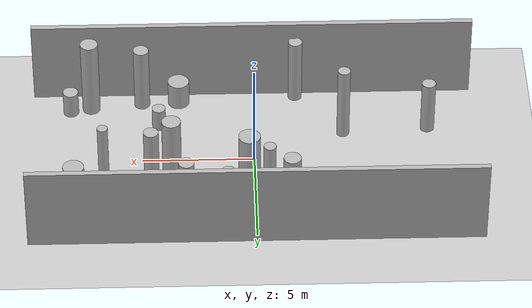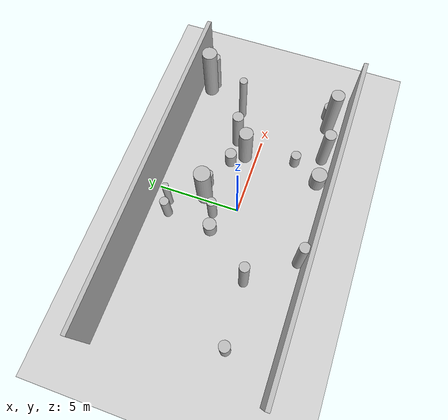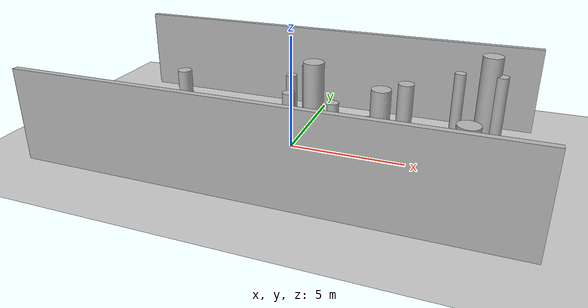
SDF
<?xml version="1.0"?>
<sdf version="1.4">
  <world name="default">
    <gui>
      <camera name="user_camera">
        <pose>-20 -30 40 0 0.66 0.83</pose>
      </camera>
    </gui>
    <include>
      <uri>model://ground_plane</uri>
    </include>
    <include>
      <uri>model://sun</uri>
    </include>
    <scene>
      <shadows>0</shadows>
    </scene>
    <model name="forest">
      <static>true</static>
      <link name="cylinder0">
        <pose>-1.6735517100893667 1.1504582004140786 0.5328721691134648 0 0 0 </pose>
        <visual name="visual">
          <geometry>
            <cylinder>
              <radius>0.3949328665443718</radius>
              <length>1.0657443382269296</length>
            </cylinder>
          </geometry>
        </visual>
        <collision name="collision">
          <geometry>
            <cylinder>
              <radius>0.3949328665443718</radius>
              <length>1.0657443382269296</length>
            </cylinder>
          </geometry>
          <max_contacts>0</max_contacts>
        </collision>
      </link>
      <link name="cylinder1">
        <pose>6.695063105569158 1.8921489105052478 1.8045743283946372 0 0 0 </pose>
        <visual name="visual">
          <geometry>
            <cylinder>
              <radius>0.232403181335236</radius>
              <length>3.6091486567892743</length>
            </cylinder>
          </geometry>
        </visual>
        <collision name="collision">
          <geometry>
            <cylinder>
              <radius>0.232403181335236</radius>
              <length>3.6091486567892743</length>
            </cylinder>
          </geometry>
          <max_contacts>0</max_contacts>
        </collision>
      </link>
      <link name="cylinder2">
        <pose>3.3708911881491677 -4.094109879331944 0.6172569849329157 0 0 0 </pose>
        <visual name="visual">
          <geometry>
            <cylinder>
              <radius>0.4831037447989271</radius>
              <length>1.2345139698658314</length>
            </cylinder>
          </geometry>
        </visual>
        <collision name="collision">
          <geometry>
            <cylinder>
              <radius>0.4831037447989271</radius>
              <length>1.2345139698658314</length>
            </cylinder>
          </geometry>
          <max_contacts>0</max_contacts>
        </collision>
      </link>
      <link name="cylinder3">
        <pose>4.2757088457827095 -2.39176409148956 0.5425854655330437 0 0 0 </pose>
        <visual name="visual">
          <geometry>
            <cylinder>
              <radius>0.3026528155428245</radius>
              <length>1.0851709310660873</length>
            </cylinder>
          </geometry>
        </visual>
        <collision name="collision">
          <geometry>
            <cylinder>
              <radius>0.3026528155428245</radius>
              <length>1.0851709310660873</length>
            </cylinder>
          </geometry>
          <max_contacts>0</max_contacts>
        </collision>
      </link>
      <link name="cylinder4">
        <pose>3.0560819861916713 1.468164974204984 0.5792149584897132 0 0 0 </pose>
        <visual name="visual">
          <geometry>
            <cylinder>
              <radius>0.35364086998826727</radius>
              <length>1.1584299169794263</length>
            </cylinder>
          </geometry>
        </visual>
        <collision name="collision">
          <geometry>
            <cylinder>
              <radius>0.35364086998826727</radius>
              <length>1.1584299169794263</length>
            </cylinder>
          </geometry>
          <max_contacts>0</max_contacts>
        </collision>
      </link>
      <link name="cylinder5">
        <pose>7.363554457524447 -3.7175463843747836 1.898955915284919 0 0 0 </pose>
        <visual name="visual">
          <geometry>
            <cylinder>
              <radius>0.40007294125637827</radius>
              <length>3.797911830569838</length>
            </cylinder>
          </geometry>
        </visual>
        <collision name="collision">
          <geometry>
            <cylinder>
              <radius>0.40007294125637827</radius>
              <length>3.797911830569838</length>
            </cylinder>
          </geometry>
          <max_contacts>0</max_contacts>
        </collision>
      </link>
      <link name="cylinder6">
        <pose>7.904163703279078 4.505981688766417 1.8452360798026484 0 0 0 </pose>
        <visual name="visual">
          <geometry>
            <cylinder>
              <radius>0.46144038741074256</radius>
              <length>3.6904721596052967</length>
            </cylinder>
          </geometry>
        </visual>
        <collision name="collision">
          <geometry>
            <cylinder>
              <radius>0.46144038741074256</radius>
              <length>3.6904721596052967</length>
            </cylinder>
          </geometry>
          <max_contacts>0</max_contacts>
        </collision>
      </link>
      <link name="cylinder7">
        <pose>-4.059715963201926 -1.7327281478482028 1.8208678730959773 0 0 0 </pose>
        <visual name="visual">
          <geometry>
            <cylinder>
              <radius>0.28197557458555217</radius>
              <length>3.6417357461919546</length>
            </cylinder>
          </geometry>
        </visual>
        <collision name="collision">
          <geometry>
            <cylinder>
              <radius>0.28197557458555217</radius>
              <length>3.6417357461919546</length>
            </cylinder>
          </geometry>
          <max_contacts>0</max_contacts>
        </collision>
      </link>
      <link name="cylinder8">
        <pose>8.39292786886638 4.305820044212627 1.4268721165713738 0 0 0 </pose>
        <visual name="visual">
          <geometry>
            <cylinder>
              <radius>0.2920932412750589</radius>
              <length>2.8537442331427476</length>
            </cylinder>
          </geometry>
        </visual>
        <collision name="collision">
          <geometry>
            <cylinder>
              <radius>0.2920932412750589</radius>
              <length>2.8537442331427476</length>
            </cylinder>
          </geometry>
          <max_contacts>0</max_contacts>
        </collision>
      </link>
      <link name="cylinder9">
        <pose>5.039802856899156 -3.979807692551196 1.5936346438245161 0 0 0 </pose>
        <visual name="visual">
          <geometry>
            <cylinder>
              <radius>0.35096928090323043</radius>
              <length>3.1872692876490323</length>
            </cylinder>
          </geometry>
        </visual>
        <collision name="collision">
          <geometry>
            <cylinder>
              <radius>0.35096928090323043</radius>
              <length>3.1872692876490323</length>
            </cylinder>
          </geometry>
          <max_contacts>0</max_contacts>
        </collision>
      </link>
      <link name="cylinder10">
        <pose>-0.6573735376286685 1.362354238043233 0.9820446610333271 0 0 0 </pose>
        <visual name="visual">
          <geometry>
            <cylinder>
              <radius>0.28031270679198883</radius>
              <length>1.9640893220666542</length>
            </cylinder>
          </geometry>
        </visual>
        <collision name="collision">
          <geometry>
            <cylinder>
              <radius>0.28031270679198883</radius>
              <length>1.9640893220666542</length>
            </cylinder>
          </geometry>
          <max_contacts>0</max_contacts>
        </collision>
      </link>
      <link name="cylinder11">
        <pose>-1.4663559753448325 3.95722114241552 0.9306900500239469 0 0 0 </pose>
        <visual name="visual">
          <geometry>
            <cylinder>
              <radius>0.2710232257035642</radius>
              <length>1.8613801000478938</length>
            </cylinder>
          </geometry>
        </visual>
        <collision name="collision">
          <geometry>
            <cylinder>
              <radius>0.2710232257035642</radius>
              <length>1.8613801000478938</length>
            </cylinder>
          </geometry>
          <max_contacts>0</max_contacts>
        </collision>
      </link>
      <link name="cylinder12">
        <pose>3.698394038409379 0.7206035834374314 1.462696021442595 0 0 0 </pose>
        <visual name="visual">
          <geometry>
            <cylinder>
              <radius>0.42356065320963254</radius>
              <length>2.92539204288519</length>
            </cylinder>
          </geometry>
        </visual>
        <collision name="collision">
          <geometry>
            <cylinder>
              <radius>0.42356065320963254</radius>
              <length>2.92539204288519</length>
            </cylinder>
          </geometry>
          <max_contacts>0</max_contacts>
        </collision>
      </link>
      <link name="cylinder13">
        <pose>-7.905327509894848 -1.9877776197469723 1.3104618712613862 0 0 0 </pose>
        <visual name="visual">
          <geometry>
            <cylinder>
              <radius>0.31256038332856406</radius>
              <length>2.6209237425227725</length>
            </cylinder>
          </geometry>
        </visual>
        <collision name="collision">
          <geometry>
            <cylinder>
              <radius>0.31256038332856406</radius>
              <length>2.6209237425227725</length>
            </cylinder>
          </geometry>
          <max_contacts>0</max_contacts>
        </collision>
      </link>
      <link name="cylinder14">
        <pose>-0.7449004589966322 4.118230512884839 1.1955457754277443 0 0 0 </pose>
        <visual name="visual">
          <geometry>
            <cylinder>
              <radius>0.20149503678063682</radius>
              <length>2.3910915508554886</length>
            </cylinder>
          </geometry>
        </visual>
        <collision name="collision">
          <geometry>
            <cylinder>
              <radius>0.20149503678063682</radius>
              <length>2.3910915508554886</length>
            </cylinder>
          </geometry>
          <max_contacts>0</max_contacts>
        </collision>
      </link>
      <link name="cylinder15">
        <pose>1.1990240794848752 2.2646411843429917 0.6909714631645354 0 0 0 </pose>
        <visual name="visual">
          <geometry>
            <cylinder>
              <radius>0.2839583977526933</radius>
              <length>1.3819429263290708</length>
            </cylinder>
          </geometry>
        </visual>
        <collision name="collision">
          <geometry>
            <cylinder>
              <radius>0.2839583977526933</radius>
              <length>1.3819429263290708</length>
            </cylinder>
          </geometry>
          <max_contacts>0</max_contacts>
        </collision>
      </link>
      <link name="cylinder16">
        <pose>4.589436679252724 1.5145551882885746 1.5032386192202432 0 0 0 </pose>
        <visual name="visual">
          <geometry>
            <cylinder>
              <radius>0.3354716798973104</radius>
              <length>3.0064772384404863</length>
            </cylinder>
          </geometry>
        </visual>
        <collision name="collision">
          <geometry>
            <cylinder>
              <radius>0.3354716798973104</radius>
              <length>3.0064772384404863</length>
            </cylinder>
          </geometry>
          <max_contacts>0</max_contacts>
        </collision>
      </link>
      <link name="cylinder17">
        <pose>-1.9712703392851534 -4.370925915735166 1.6076312165335587 0 0 0 </pose>
        <visual name="visual">
          <geometry>
            <cylinder>
              <radius>0.3110647708872779</radius>
              <length>3.2152624330671173</length>
            </cylinder>
          </geometry>
        </visual>
        <collision name="collision">
          <geometry>
            <cylinder>
              <radius>0.3110647708872779</radius>
              <length>3.2152624330671173</length>
            </cylinder>
          </geometry>
          <max_contacts>0</max_contacts>
        </collision>
      </link>
      <link name="cylinder18">
        <pose>0.2709383406833883 2.1975280095984537 1.6362163000949115 0 0 0 </pose>
        <visual name="visual">
          <geometry>
            <cylinder>
              <radius>0.4842580432021793</radius>
              <length>3.272432600189823</length>
            </cylinder>
          </geometry>
        </visual>
        <collision name="collision">
          <geometry>
            <cylinder>
              <radius>0.4842580432021793</radius>
              <length>3.272432600189823</length>
            </cylinder>
          </geometry>
          <max_contacts>0</max_contacts>
        </collision>
      </link>
      <link name="cylinder19">
        <pose>8.28372728866518 -3.491512016661037 0.6014625970238414 0 0 0 </pose>
        <visual name="visual">
          <geometry>
            <cylinder>
              <radius>0.3458819786206034</radius>
              <length>1.2029251940476828</length>
            </cylinder>
          </geometry>
        </visual>
        <collision name="collision">
          <geometry>
            <cylinder>
              <radius>0.3458819786206034</radius>
              <length>1.2029251940476828</length>
            </cylinder>
          </geometry>
          <max_contacts>0</max_contacts>
        </collision>
      </link>
      <link name="cube0">
        <pose>0 5.25 2.0 0 0 0 </pose>
        <visual name="visual">
          <geometry>
            <box>
              <size>20 0.25 4.0</size>
            </box>
          </geometry>
        </visual>
        <collision name="collision">
          <geometry>
            <box>
              <size>20 0.25 4.0</size>
            </box>
          </geometry>
          <max_contacts>0</max_contacts>
        </collision>
      </link>
      <link name="cube1">
        <pose>0 -4.75 2.0 0 0 0 </pose>
        <visual name="visual">
          <geometry>
            <box>
              <size>20 0.25 4.0</size>
            </box>
          </geometry>
        </visual>
        <collision name="collision">
          <geometry>
            <box>
              <size>20 0.25 4.0</size>
            </box>
          </geometry>
          <max_contacts>0</max_contacts>
        </collision>
      </link>
    </model>
    <!-- Plugins -->
    <plugin name="gazebo_octomap" filename="librotors_gazebo_octomap_plugin.so"/>
    <plugin name="ros_interface_plugin" filename="librotors_gazebo_ros_interface_plugin.so"/>
    <!-- Physics -->
    <physics name="default_physics" default="0" type="ode">
      <max_step_size>0.004</max_step_size>
      <real_time_factor>1</real_time_factor>
      <real_time_update_rate>250</real_time_update_rate>
      <gravity>0 0 -9.8</gravity>
      <magnetic_field>6e-06 2.3e-05 -4.2e-05</magnetic_field>
      <ode>
        <solver>
          <type>quick</type>
          <iters>1000</iters>
          <sor>1.3</sor>
          <use_dynamic_moi_rescaling>0</use_dynamic_moi_rescaling>
        </solver>
        <constraints>
          <cfm>0</cfm>
          <erp>0.2</erp>
          <contact_max_correcting_vel>100</contact_max_correcting_vel>
          <contact_surface_layer>0.001</contact_surface_layer>
        </constraints>
      </ode>
    </physics>
  </world>
</sdf>
